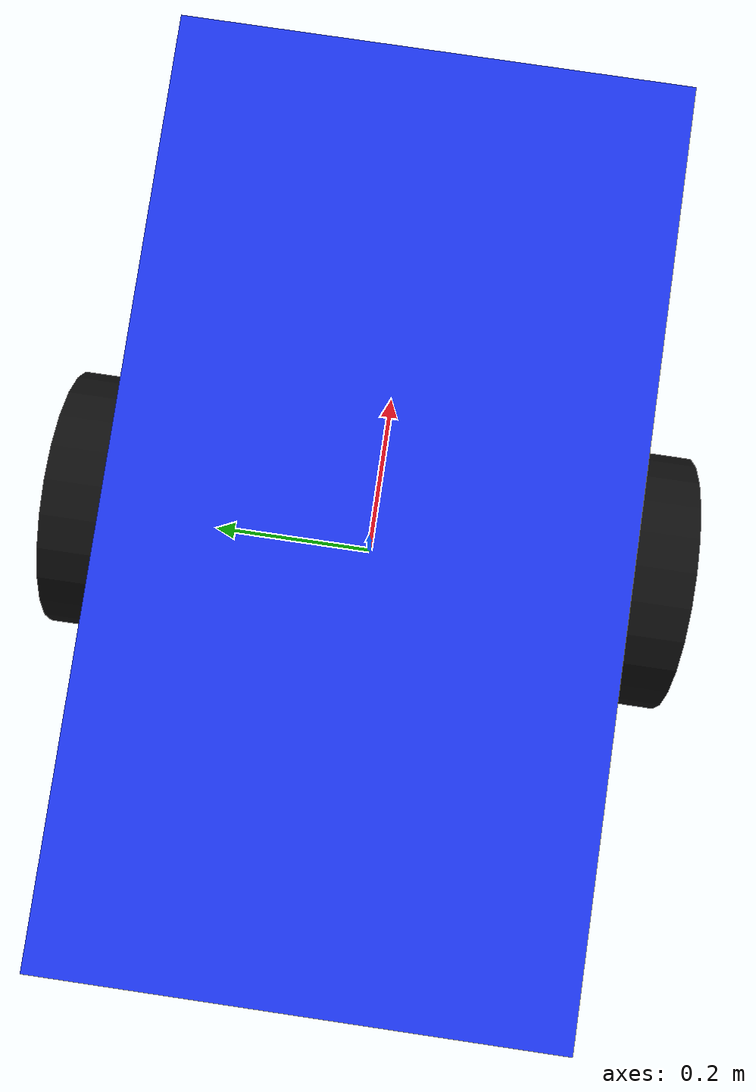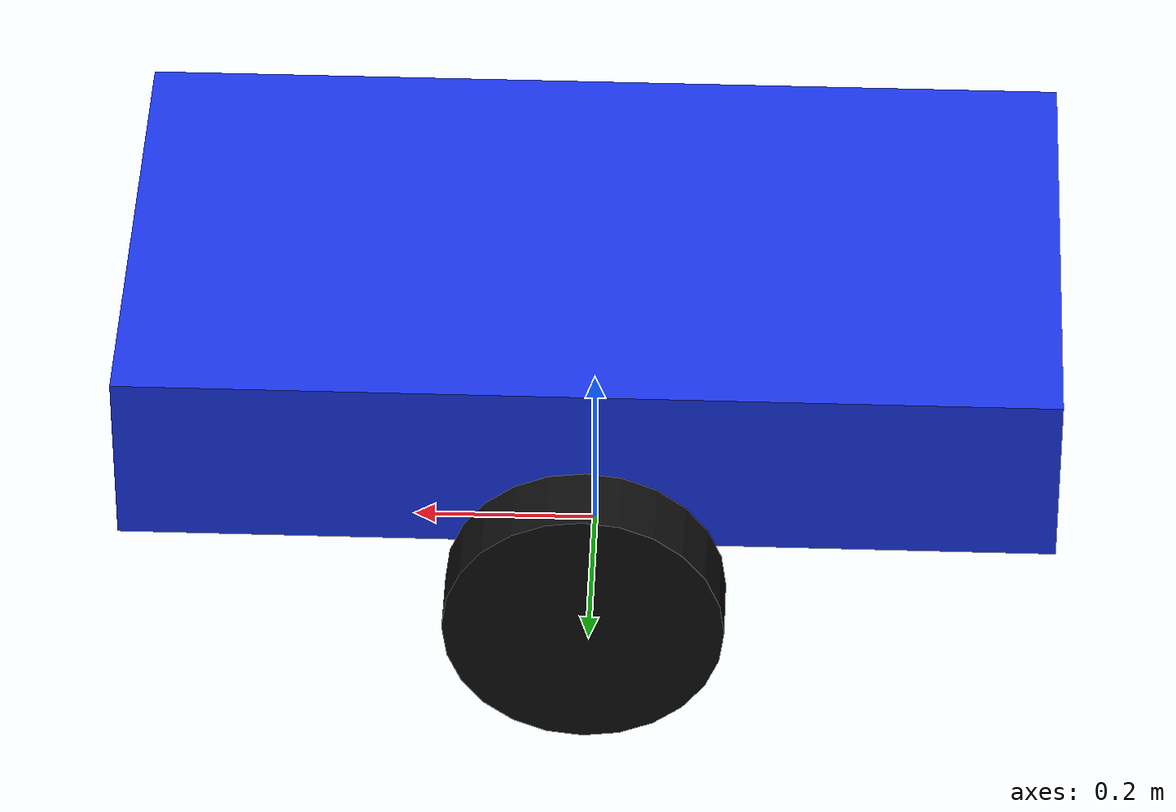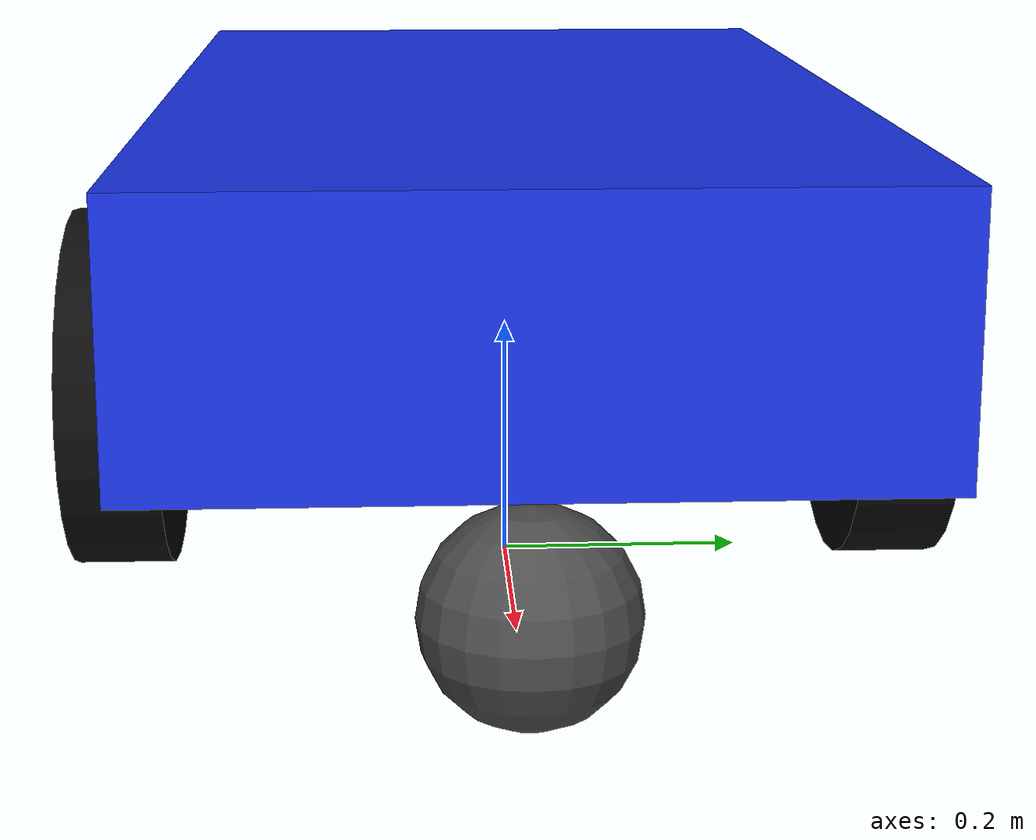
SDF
<?xml version="1.0"?>
    <sdf version="1.10">

      <model name="simple_route_robot">

        <link name="base_link">
          <pose>0 0 0.30 0 0 0</pose>

          <inertial>
            <mass>15.0</mass>
            <inertia>
              <ixx>0.43</ixx>
              <iyy>1.30</iyy>
              <izz>1.63</izz>
            </inertia>
          </inertial>

          <collision name="base_collision">
            <geometry>
              <box>
                <size>1.00 0.55 0.20</size>
              </box>
            </geometry>
          </collision>

          <visual name="base_visual">
            <geometry>
              <box>
                <size>1.00 0.55 0.20</size>
              </box>
            </geometry>

            <material>
              <ambient>0.10 0.20 0.90 1</ambient>
              <diffuse>0.10 0.20 0.90 1</diffuse>
            </material>
          </visual>
        </link>

        <!-- RUEDA MOTRIZ IZQUIERDA -->

        <link name="left_wheel">
          <pose>0 0.32 0.15 0 0 0</pose>

          <inertial>
            <mass>1.0</mass>
            <inertia>
              <ixx>0.0062</ixx>
              <iyy>0.0113</iyy>
              <izz>0.0062</izz>
            </inertia>
          </inertial>

          <collision name="collision">
            <pose>0 0 0 1.570796 0 0</pose>

            <geometry>
              <cylinder>
                <radius>0.15</radius>
                <length>0.08</length>
              </cylinder>
            </geometry>

            <surface>
              <friction>
                <ode>
                  <mu>5.0</mu>
                  <mu2>5.0</mu2>
                </ode>
              </friction>
            </surface>
          </collision>

          <visual name="visual">
            <pose>0 0 0 1.570796 0 0</pose>

            <geometry>
              <cylinder>
                <radius>0.15</radius>
                <length>0.08</length>
              </cylinder>
            </geometry>

            <material>
              <ambient>0.05 0.05 0.05 1</ambient>
              <diffuse>0.05 0.05 0.05 1</diffuse>
            </material>
          </visual>
        </link>

        <!-- RUEDA MOTRIZ DERECHA -->

        <link name="right_wheel">
          <pose>0 -0.32 0.15 0 0 0</pose>

          <inertial>
            <mass>1.0</mass>
            <inertia>
              <ixx>0.0062</ixx>
              <iyy>0.0113</iyy>
              <izz>0.0062</izz>
            </inertia>
          </inertial>

          <collision name="collision">
            <pose>0 0 0 1.570796 0 0</pose>

            <geometry>
              <cylinder>
                <radius>0.15</radius>
                <length>0.08</length>
              </cylinder>
            </geometry>

            <surface>
              <friction>
                <ode>
                  <mu>5.0</mu>
                  <mu2>5.0</mu2>
                </ode>
              </friction>
            </surface>
          </collision>

          <visual name="visual">
            <pose>0 0 0 1.570796 0 0</pose>

            <geometry>
              <cylinder>
                <radius>0.15</radius>
                <length>0.08</length>
              </cylinder>
            </geometry>

            <material>
              <ambient>0.05 0.05 0.05 1</ambient>
              <diffuse>0.05 0.05 0.05 1</diffuse>
            </material>
          </visual>
        </link>

        <!-- CASTER DELANTERO -->

        <link name="front_caster">
          <pose>0.38 0 0.08 0 0 0</pose>

          <inertial>
            <mass>0.20</mass>
            <inertia>
              <ixx>0.0005</ixx>
              <iyy>0.0005</iyy>
              <izz>0.0005</izz>
            </inertia>
          </inertial>

          <collision name="collision">
            <geometry>
              <sphere>
                <radius>0.06</radius>
              </sphere>
            </geometry>

            <surface>
              <friction>
                <ode>
                  <mu>0.05</mu>
                  <mu2>0.05</mu2>
                </ode>
              </friction>
            </surface>
          </collision>

          <visual name="visual">
            <geometry>
              <sphere>
                <radius>0.08</radius>
              </sphere>
            </geometry>

            <material>
              <ambient>0.30 0.30 0.30 1</ambient>
              <diffuse>0.30 0.30 0.30 1</diffuse>
            </material>
          </visual>
        </link>

        <!-- CASTER TRASERO -->

        <link name="rear_caster">
          <pose>-0.38 0 0.08 0 0 0</pose>

          <inertial>
            <mass>0.20</mass>
            <inertia>
              <ixx>0.0005</ixx>
              <iyy>0.0005</iyy>
              <izz>0.0005</izz>
            </inertia>
          </inertial>

          <collision name="collision">
            <geometry>
              <sphere>
                <radius>0.08</radius>
              </sphere>
            </geometry>

            <surface>
              <friction>
                <ode>
                  <mu>0.05</mu>
                  <mu2>0.05</mu2>
                </ode>
              </friction>
            </surface>
          </collision>

          <visual name="visual">
            <geometry>
              <sphere>
                <radius>0.08</radius>
              </sphere>
            </geometry>

            <material>
              <ambient>0.30 0.30 0.30 1</ambient>
              <diffuse>0.30 0.30 0.30 1</diffuse>
            </material>
          </visual>
        </link>

        <!-- JOINTS DE LAS RUEDAS MOTRICES -->

        <joint name="left_wheel_joint" type="revolute">
          <parent>base_link</parent>
          <child>left_wheel</child>

          <axis>
            <xyz>0 1 0</xyz>
          </axis>
        </joint>

        <joint name="right_wheel_joint" type="revolute">
          <parent>base_link</parent>
          <child>right_wheel</child>

          <axis>
            <xyz>0 1 0</xyz>
          </axis>
        </joint>

        <!-- JOINTS LIBRES DE LOS CASTER -->

        <joint name="front_caster_joint" type="ball">
          <parent>base_link</parent>
          <child>front_caster</child>
        </joint>

        <joint name="rear_caster_joint" type="ball">
          <parent>base_link</parent>
          <child>rear_caster</child>
        </joint>

        <!-- CONTROL DIFERENCIAL -->

        <plugin
          filename="gz-sim-diff-drive-system"
          name="gz::sim::systems::DiffDrive">

          <left_joint>left_wheel_joint</left_joint>
          <right_joint>right_wheel_joint</right_joint>

          <wheel_separation>0.64</wheel_separation>
          <wheel_radius>0.15</wheel_radius>

          <odom_publish_frequency>20</odom_publish_frequency>

          <topic>/simple_route_robot/cmd_vel</topic>
          <odom_topic>/simple_route_robot/odometry</odom_topic>

        </plugin>

      </model>

    </sdf>
